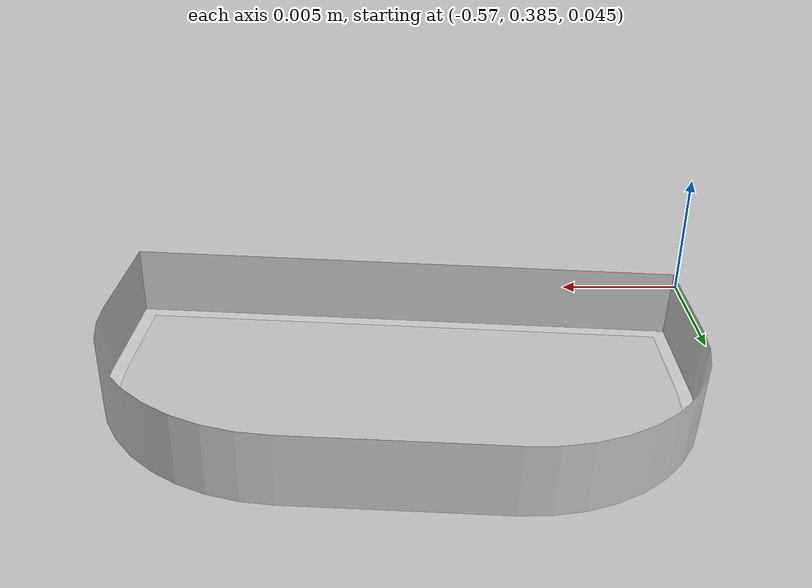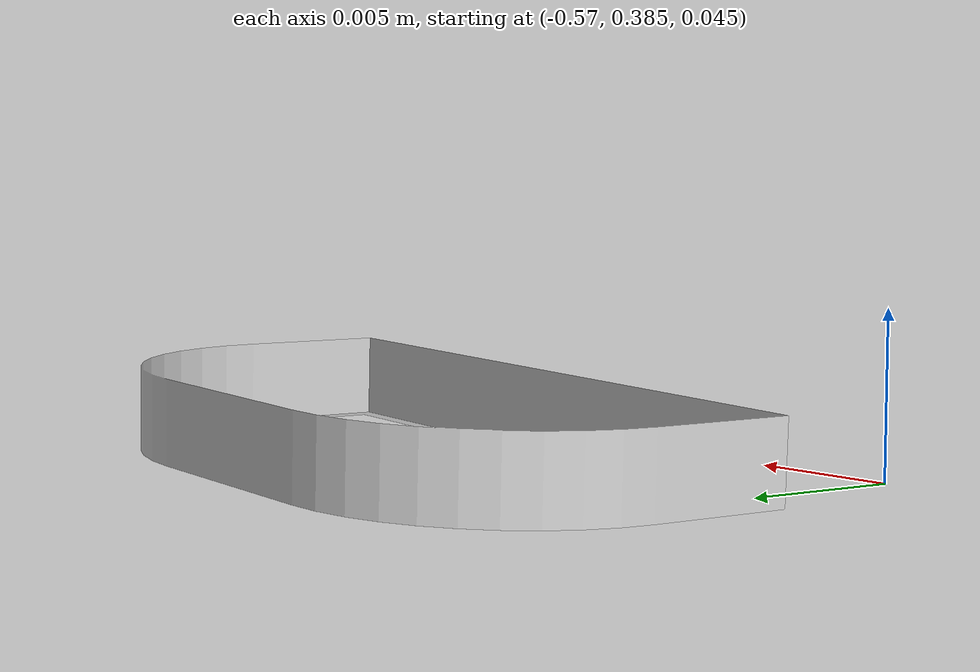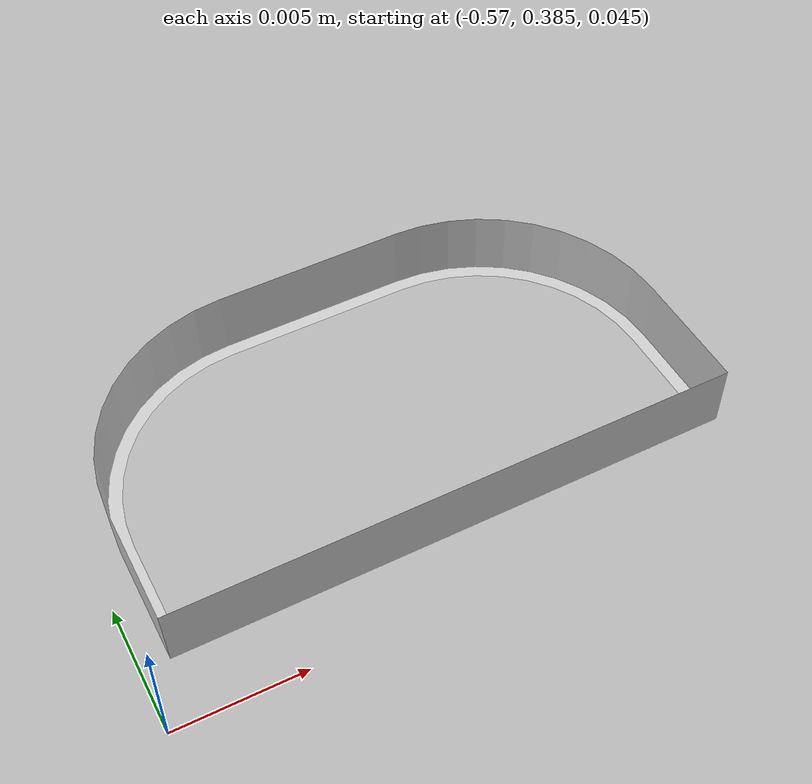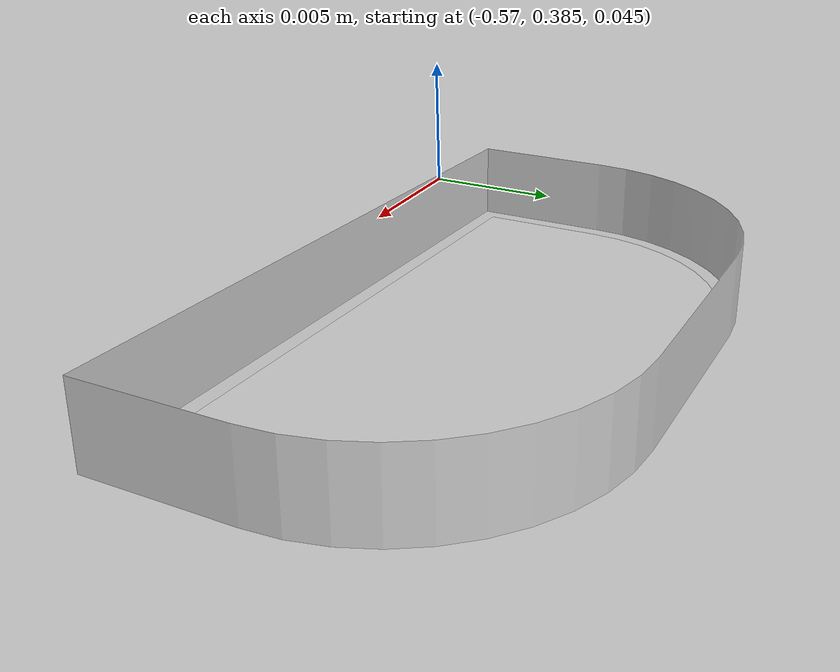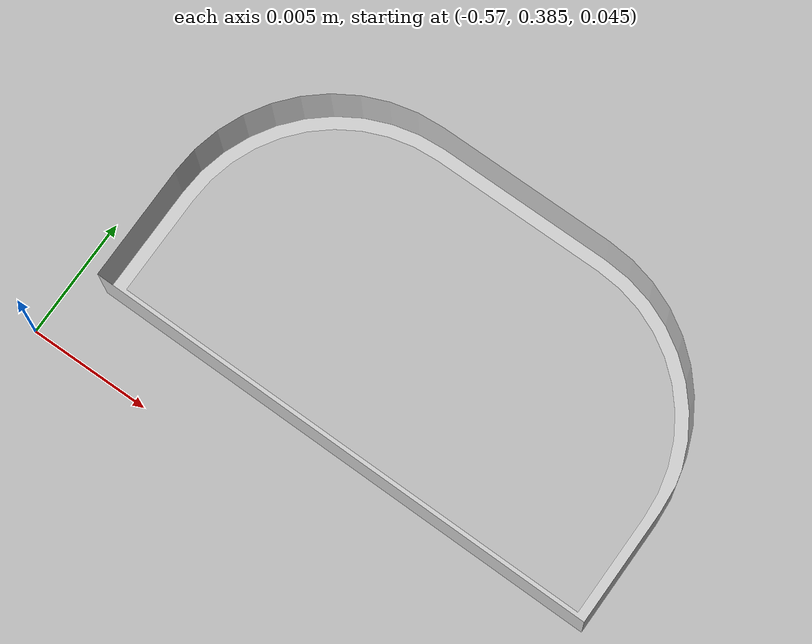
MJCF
<mujoco model="original-70">
  <default>
    <default class="visual">
      <geom group="2" type="mesh" contype="0" conaffinity="0"/>
    </default>
    <default class="collision">
      <geom group="3" type="mesh"/>
    </default>
  </default>
  <asset>
    <material name="material_0_0" specular="0.06666666666666667" shininess="0.03" rgba="0.8 0.8 0.8 1"/>
    <mesh file="original-70.obj"/>
  </asset>
  <worldbody>
    <body name="original-70">
      <geom material="material_0_0" mesh="original-70" class="visual"/>
      <geom mesh="original-70" class="collision"/>
    </body>
  </worldbody>
</mujoco>
